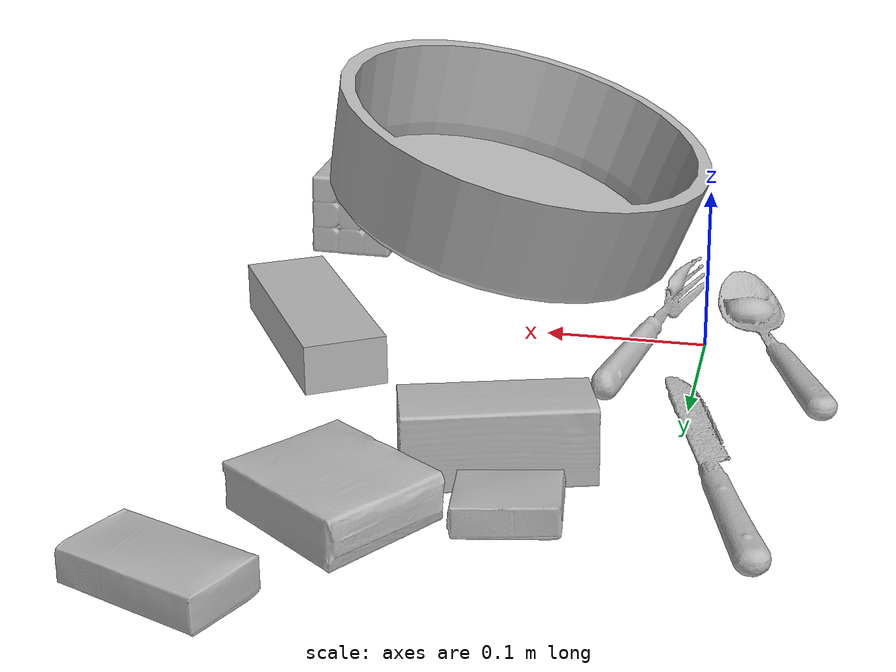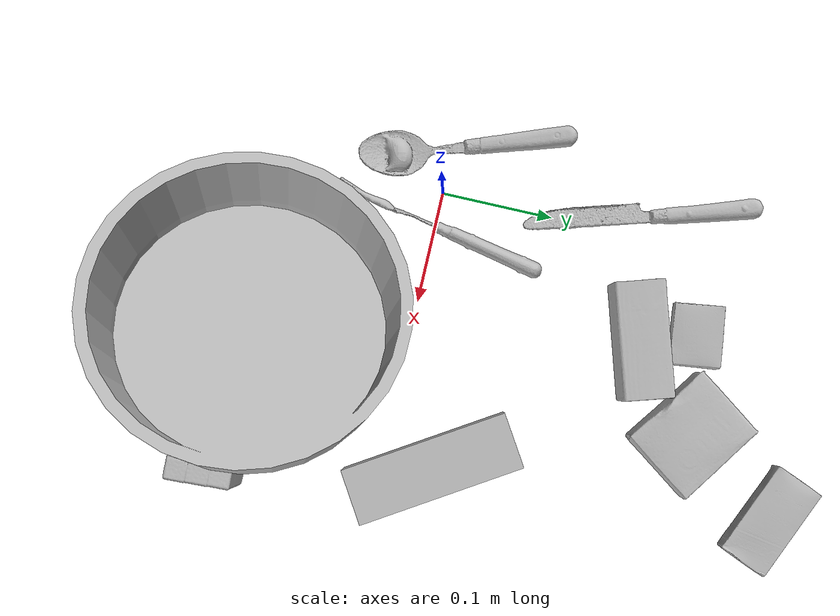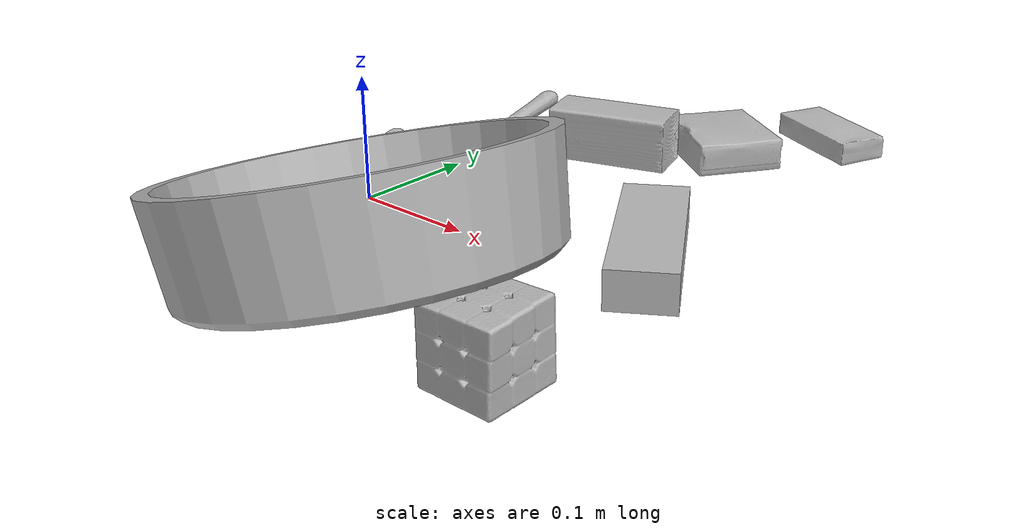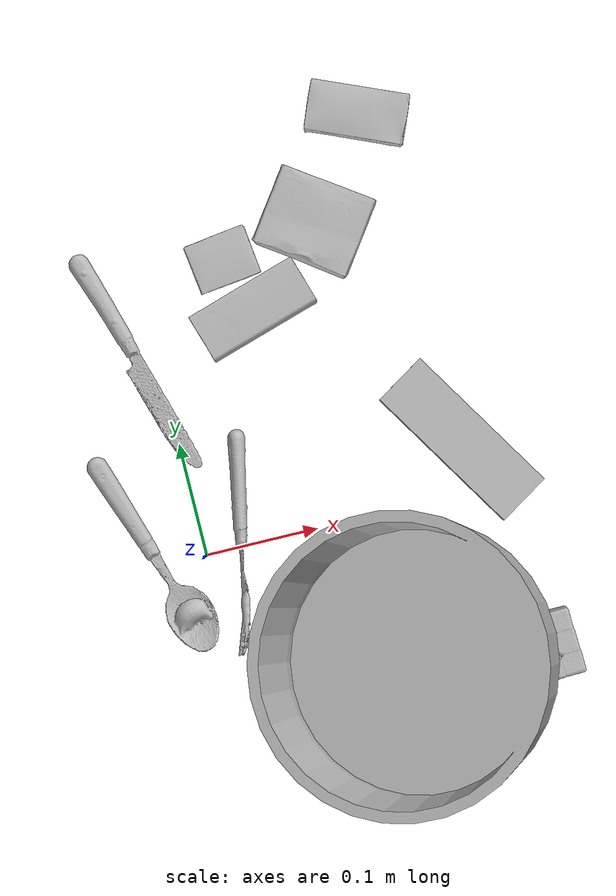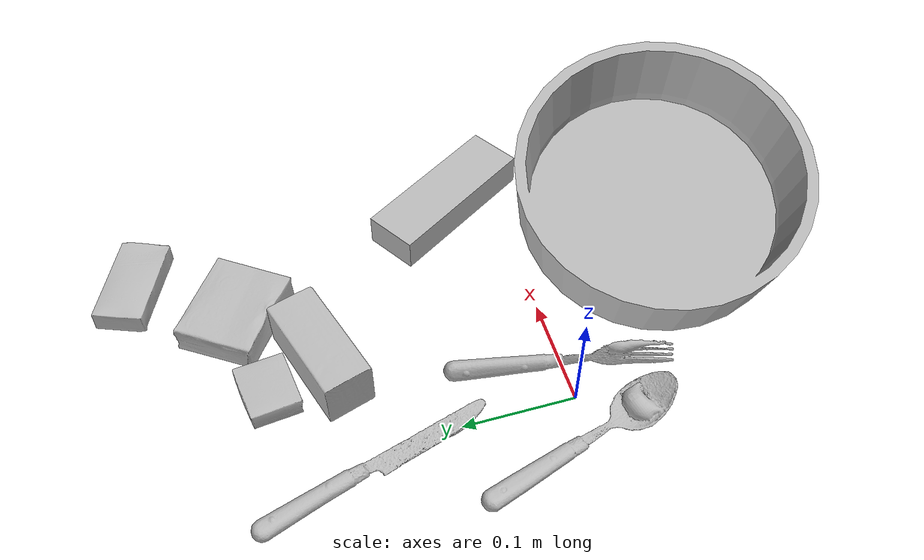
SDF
<sdf version="1.4">
  <world name="default">
    <light name="light1" type="point">
      <pose>0 0 1 0 0 0</pose>
      <diffuse>3 3 3 1</diffuse>
      <specular>3 3 3 1</specular>
    </light>
    <light name="light2" type="point">
      <pose>0 0.5 2 0 0 0</pose>
      <diffuse>1 1 1 1</diffuse>
      <specular>1 1 1 1</specular>
    </light>
    <light name="light3" type="point">
      <pose>0 0.5 2 0 0 0</pose>
      <diffuse>3 3 3 1</diffuse>
      <specular>3 3 3 1</specular>
    </light>
    <scene>
      <ambient>0.7 0.7 0.7</ambient>
    </scene>
    <model name="box11">
      <link name="link_box11">
        <collision name="default">
          <geometry>
            <mesh>
              <uri>model://jenga/collision_meshes/collision.obj</uri>
              <scale>1.0 1.0 1.0</scale>
            </mesh>
          </geometry>
          <surface>
            <friction>
              <ode>
                <mu>0.5</mu>
                <mu2>0.5</mu2>
              </ode>
            </friction>
          <contact>
        <ode>
            <max_vel>0</max_vel>
            <min_depth>0.0001</min_depth>
            <kp>1e8</kp>
        </ode>
    </contact></surface>
        </collision>
        <visual name="default">
          <geometry>
            <mesh>
              <uri>model://jenga/visual_meshes/visual.dae</uri>
              <scale>1.0 1.0 1.0</scale>
            </mesh>
          </geometry>
        </visual>
        <inertial>
          <mass>0.22063912451267242</mass>
          <pose>-2.502855807051674e-07 -0.00010250011109746993 -4.0923405322246253e-05 0.0 -7.34215461761844e-07 0.0</pose>
          <inertia>
            <ixx>6.1056206e-05</ixx>
            <iyy>0.00041371517</iyy>
            <izz>0.00044167612</izz>
            <ixy>0</ixy>
            <ixz>0</ixz>
            <iyz>0</iyz>
          </inertia>
        </inertial>
      </link>
      <pose>0.23985251784324646 0.046236734837293625 0.015000001527369022 -2.6429465415059125e-08 -3.915879619631784e-09 -1.0084943042351342</pose>
    </model>
    <model name="box12">
      <link name="link_box12">
        <collision name="default">
          <geometry>
            <mesh>
              <uri>model://sugar_box/collision_meshes/collision.obj</uri>
              <scale>0.5 0.5 0.5</scale>
            </mesh>
          </geometry>
          <surface>
            <friction>
              <ode>
                <mu>0.5</mu>
                <mu2>0.5</mu2>
              </ode>
            </friction>
          <contact>
        <ode>
            <max_vel>0</max_vel>
            <min_depth>0.0001</min_depth>
            <kp>1e8</kp>
        </ode>
    </contact></surface>
        </collision>
        <visual name="default">
          <geometry>
            <mesh>
              <uri>model://sugar_box/visual_meshes/visual.dae</uri>
              <scale>0.5 0.5 0.5</scale>
            </mesh>
          </geometry>
        </visual>
        <inertial>
          <mass>0.053318966180086136</mass>
          <pose>0.0005171863595023751 1.924554817378521e-05 -0.00018182402709499002 -0.00040462627129080113 0.001050663522124822 0.0026153787889376494</pose>
          <inertia>
            <ixx>1.1106302e-05</ixx>
            <iyy>3.5897858e-05</iyy>
            <izz>4.2974014e-05</izz>
            <ixy>0</ixy>
            <ixz>0</ixz>
            <iyz>0</iyz>
          </inertia>
        </inertial>
      </link>
      <pose>0.21878138184547424 0.34416553378105164 0.011399300768971443 0.0007752746177912168 -0.02343322731106423 2.742408916676481</pose>
    </model>
    <model name="box13">
      <link name="link_box13">
        <collision name="default">
          <geometry>
            <mesh>
              <uri>model://gelatin_box/collision_meshes/collision.obj</uri>
              <scale>1.0 1.0 1.0</scale>
            </mesh>
          </geometry>
          <surface>
            <friction>
              <ode>
                <mu>0.5</mu>
                <mu2>0.5</mu2>
              </ode>
            </friction>
          <contact>
        <ode>
            <max_vel>0</max_vel>
            <min_depth>0.0001</min_depth>
            <kp>1e8</kp>
        </ode>
    </contact></surface>
        </collision>
        <visual name="default">
          <geometry>
            <mesh>
              <uri>model://gelatin_box/visual_meshes/visual.dae</uri>
              <scale>1.0 1.0 1.0</scale>
            </mesh>
          </geometry>
        </visual>
        <inertial>
          <mass>0.19111748039722443</mass>
          <pose>0.0004319618456065655 0.00011156871914863586 -0.00036403207923285663 -0.0010503719765995955 -0.004755818690324038 0.01644055947160125</pose>
          <inertia>
            <ixx>0.00013491335</ixx>
            <iyy>9.63679e-05</iyy>
            <izz>0.00020536821</izz>
            <ixy>0</ixy>
            <ixz>0</ixz>
            <iyz>0</iyz>
          </inertia>
        </inertial>
      </link>
      <pose>0.16019898653030396 0.2608640491962433 0.015168320387601852 0.005597484832733345 -0.007304583167336022 -2.1915267586101725</pose>
    </model>
    <model name="box21">
      <link name="link_box21">
        <collision name="default">
          <geometry>
            <mesh>
              <uri>model://pudding_box/collision_meshes/collision.obj</uri>
              <scale>0.5 0.5 0.5</scale>
            </mesh>
          </geometry>
          <surface>
            <friction>
              <ode>
                <mu>0.5</mu>
                <mu2>0.5</mu2>
              </ode>
            </friction>
          <contact>
        <ode>
            <max_vel>0</max_vel>
            <min_depth>0.0001</min_depth>
            <kp>1e8</kp>
        </ode>
    </contact></surface>
        </collision>
        <visual name="default">
          <geometry>
            <mesh>
              <uri>model://pudding_box/visual_meshes/visual.dae</uri>
              <scale>0.5 0.5 0.5</scale>
            </mesh>
          </geometry>
        </visual>
        <inertial>
          <mass>0.037507444620132446</mass>
          <pose>0.00024474109522998333 0.0004033942532259971 -0.0002594413817860186 0.00521310221980129 -0.006603800139852783 0.020079832606434308</pose>
          <inertia>
            <ixx>1.0600058e-05</ixx>
            <iyy>7.131795e-06</iyy>
            <izz>1.5653754e-05</izz>
            <ixy>0</ixy>
            <ixz>0</ixz>
            <iyz>0</iyz>
          </inertia>
        </inertial>
      </link>
      <pose>0.07471992075443268 0.24712948501110077 0.00986290443688631 0.022348578079415562 -0.011391656710313044 1.70362779546622</pose>
    </model>
    <model name="box22">
      <link name="link_box22">
        <collision name="default">
          <geometry>
            <mesh>
              <uri>model://rubiks_cube/collision_meshes/collision.obj</uri>
              <scale>1.0 1.0 1.0</scale>
            </mesh>
          </geometry>
          <surface>
            <friction>
              <ode>
                <mu>0.5</mu>
                <mu2>0.5</mu2>
              </ode>
            </friction>
          <contact>
        <ode>
            <max_vel>0</max_vel>
            <min_depth>0.0001</min_depth>
            <kp>1e8</kp>
        </ode>
    </contact></surface>
        </collision>
        <visual name="default">
          <geometry>
            <mesh>
              <uri>model://rubiks_cube/visual_meshes/visual.dae</uri>
              <scale>1.0 1.0 1.0</scale>
            </mesh>
          </geometry>
        </visual>
        <inertial>
          <mass>0.19412381947040558</mass>
          <pose>2.6721041649580002e-05 5.2569666877388954e-05 -7.264316082000732e-06 -0.05467327462967597 -0.09814157667114887 -0.034454893398498845</pose>
          <inertia>
            <ixx>0.000107266445</ixx>
            <iyy>0.0001067662</iyy>
            <izz>0.00010815532</izz>
            <ixy>0</ixy>
            <ixz>0</ixz>
            <iyz>0</iyz>
          </inertia>
        </inertial>
      </link>
      <pose>0.2657760679721832 -0.14500418305397034 0.02868194878101349 0.0002386057291781469 3.067428434247373e-05 -1.5317225079225552</pose>
    </model>
    <model name="box23">
      <link name="link_box23">
        <collision name="default">
          <geometry>
            <mesh>
              <uri>model://wood_block/collision_meshes/collision.obj</uri>
              <scale>0.5 0.5 0.5</scale>
            </mesh>
          </geometry>
          <surface>
            <friction>
              <ode>
                <mu>0.5</mu>
                <mu2>0.5</mu2>
              </ode>
            </friction>
          <contact>
        <ode>
            <max_vel>0</max_vel>
            <min_depth>0.0001</min_depth>
            <kp>1e8</kp>
        </ode>
    </contact></surface>
        </collision>
        <visual name="default">
          <geometry>
            <mesh>
              <uri>model://wood_block/visual_meshes/visual.dae</uri>
              <scale>0.5 0.5 0.5</scale>
            </mesh>
          </geometry>
        </visual>
        <inertial>
          <mass>0.12021861970424652</mass>
          <pose>-2.9066577553749084e-06 -0.000285404734313488 0.00013204291462898254 -0.05220783851692058 -0.005192695246339916 -0.006861377900732038</pose>
          <inertia>
            <ixx>4.0217674e-05</ixx>
            <iyy>0.00012704768</iyy>
            <izz>0.00012657243</izz>
            <ixy>0</ixy>
            <ixz>0</ixz>
            <iyz>0</iyz>
          </inertia>
        </inertial>
      </link>
      <pose>0.09078311175107956 0.1981106400489807 0.02262926660478115 -0.005208480817099487 0.005718742311327946 0.3028498883257664</pose>
    </model>
    <model name="plate1">
      <link name="link_plate1">
        <collision name="default">
          <geometry>
            <mesh>
              <uri>model://pan_tefal/collision_meshes/collision.obj</uri>
              <scale>1.0 1.0 1.0</scale>
            </mesh>
          </geometry>
          <surface>
            <friction>
              <ode>
                <mu>0.5</mu>
                <mu2>0.5</mu2>
              </ode>
            </friction>
          <contact>
        <ode>
            <max_vel>0</max_vel>
            <min_depth>0.0001</min_depth>
            <kp>1e8</kp>
        </ode>
    </contact></surface>
        </collision>
        <visual name="default">
          <geometry>
            <mesh>
              <uri>model://pan_tefal/visual_meshes/visual.dae</uri>
              <scale>1.0 1.0 1.0</scale>
            </mesh>
          </geometry>
        </visual>
        <inertial>
          <mass>1.1174349784851074</mass>
          <pose>-0.0001800186582840979 3.278696021880023e-05 -0.00851493701338768 0.0008190242272949328 -0.00033013996347192336 -0.33186114310704434</pose>
          <inertia>
            <ixx>0.0077136005</ixx>
            <iyy>0.0077633304</iyy>
            <izz>0.014199255</izz>
            <ixy>0</ixy>
            <ixz>0</ixz>
            <iyz>0</iyz>
          </inertia>
        </inertial>
      </link>
      <pose>0.14803138375282288 -0.12904669344425201 0.06922270357608795 0.20770430217228272 -0.19887495962678148 -1.0821826859512806</pose>
    </model>
    <model name="silverware1">
      <link name="link_silverware1">
        <collision name="default">
          <geometry>
            <mesh>
              <uri>model://spoon/collision_meshes/collision.obj</uri>
              <scale>1.0 1.0 1.0</scale>
            </mesh>
          </geometry>
          <surface>
            <friction>
              <ode>
                <mu>0.5</mu>
                <mu2>0.5</mu2>
              </ode>
            </friction>
          <contact>
        <ode>
            <max_vel>0</max_vel>
            <min_depth>0.0001</min_depth>
            <kp>1e8</kp>
        </ode>
    </contact></surface>
        </collision>
        <visual name="default">
          <geometry>
            <mesh>
              <uri>model://spoon/visual_meshes/visual.dae</uri>
              <scale>1.0 1.0 1.0</scale>
            </mesh>
          </geometry>
        </visual>
        <inertial>
          <mass>0.03790392354130745</mass>
          <pose>-0.005526311695575714 -0.0016034170985221863 -0.0007271655485965312 0.03521845899657386 -0.039065840459698326 0.006150612465639116</pose>
          <inertia>
            <ixx>2.1082776e-06</ixx>
            <iyy>0.00014422317</iyy>
            <izz>0.00014526285</izz>
            <ixy>0</ixy>
            <ixz>0</ixz>
            <iyz>0</iyz>
          </inertia>
        </inertial>
      </link>
      <pose>-0.04323524981737137 0.012637171894311905 0.008385265246033669 0.0067316709711209245 0.02689301004266128 -1.2462055399258702</pose>
    </model>
    <model name="silverware2">
      <link name="link_silverware2">
        <collision name="default">
          <geometry>
            <mesh>
              <uri>model://fork/collision_meshes/collision.obj</uri>
              <scale>1.0 1.0 1.0</scale>
            </mesh>
          </geometry>
          <surface>
            <friction>
              <ode>
                <mu>0.5</mu>
                <mu2>0.5</mu2>
              </ode>
            </friction>
          <contact>
        <ode>
            <max_vel>0</max_vel>
            <min_depth>0.0001</min_depth>
            <kp>1e8</kp>
        </ode>
    </contact></surface>
        </collision>
        <visual name="default">
          <geometry>
            <mesh>
              <uri>model://fork/visual_meshes/visual.dae</uri>
              <scale>1.0 1.0 1.0</scale>
            </mesh>
          </geometry>
        </visual>
        <inertial>
          <mass>0.029004188254475594</mass>
          <pose>-0.02957005612552166 0.0004658824182115495 0.00032188621116802096 -0.013551880215526314 -0.010977843078655252 0.014453906566097012</pose>
          <inertia>
            <ixx>1.0167608e-06</ixx>
            <iyy>7.572158e-05</iyy>
            <izz>7.617634e-05</izz>
            <ixy>0</ixy>
            <ixz>0</ixz>
            <iyz>0</iyz>
          </inertia>
        </inertial>
      </link>
      <pose>0.033207327127456665 0.004158765077590942 0.01152007095515728 1.385663982972155 -0.027312980626836954 -1.7487692131571513</pose>
    </model>
    <model name="silverware3">
      <link name="link_silverware3">
        <collision name="default">
          <geometry>
            <mesh>
              <uri>model://knife/collision_meshes/collision.obj</uri>
              <scale>1.0 1.0 1.0</scale>
            </mesh>
          </geometry>
          <surface>
            <friction>
              <ode>
                <mu>0.5</mu>
                <mu2>0.5</mu2>
              </ode>
            </friction>
          <contact>
        <ode>
            <max_vel>0</max_vel>
            <min_depth>0.0001</min_depth>
            <kp>1e8</kp>
        </ode>
    </contact></surface>
        </collision>
        <visual name="default">
          <geometry>
            <mesh>
              <uri>model://knife/visual_meshes/visual.dae</uri>
              <scale>1.0 1.0 1.0</scale>
            </mesh>
          </geometry>
        </visual>
        <inertial>
          <mass>0.015800314024090767</mass>
          <pose>-0.023785250261425972 0.0015275126788765192 5.0620288675418124e-05 0.07305498599936577 0.01724841842216061 -0.0074098211805850795</pose>
          <inertia>
            <ixx>4.48477e-07</ixx>
            <iyy>6.0702252e-05</iyy>
            <izz>6.0846694e-05</izz>
            <ixy>0</ixy>
            <ixz>0</ixz>
            <iyz>0</iyz>
          </inertia>
        </inertial>
      </link>
      <pose>-0.020660433918237686 0.17829838395118713 0.007946573197841644 -0.023853581962766147 -0.014543175312935934 -1.2820199508527268</pose>
    </model>
  <physics type="ode">
      <max_contacts>50</max_contacts>
      <ode>
        <solver>
          <type>quick</type>
          <iters>75</iters>
        </solver>
        <constraints>
          <contact_max_correcting_vel>0</contact_max_correcting_vel>
          <contact_surface_layer>0</contact_surface_layer>
        </constraints>
      </ode>
    </physics></world>
</sdf>
